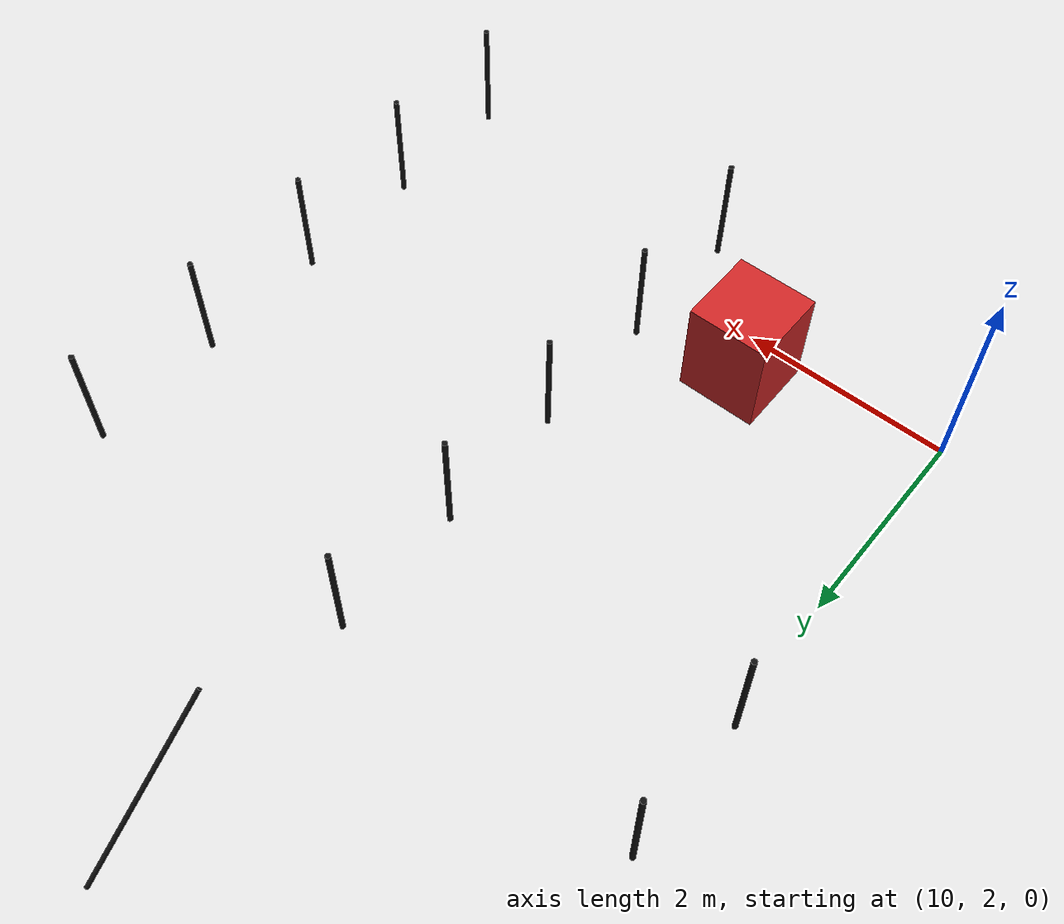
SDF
<sdf version="1.6">
 <world name="default">
  <model name="pole_53">
   <static>1</static>
   <pose>9.94 5.28 0.575 0 -0 0</pose>
   <link name="link">
    <collision name="collision">
     <geometry><cylinder><length>1.15</length><radius>0.025</radius></cylinder></geometry>
    </collision>
    <visual name="visual">
     <geometry><cylinder><length>1.15</length><radius>0.025</radius></cylinder></geometry>
     <material>
      <script><uri>file://media/materials/scripts/gazebo.material</uri><name>Gazebo/Chrome</name></script>
      <shader type="vertex"><normal_map>__default__</normal_map></shader>
      <emissive>0.1 0.1 0.1 1</emissive>
      <specular>0.01 0.01 0.01 1</specular>
      <ambient>0.5 0.5 0.5 1</ambient>
      <diffuse>0.05 0.05 0.05 1</diffuse>
     </material>
    </visual>
   </link>
  </model>
  <model name="pole_54">
   <static>1</static>
   <pose>9.94 6.6 0.575 0 -0 0</pose>
   <link name="link">
    <collision name="collision">
     <geometry><cylinder><length>1.15</length><radius>0.025</radius></cylinder></geometry>
    </collision>
    <visual name="visual">
     <geometry><cylinder><length>1.15</length><radius>0.025</radius></cylinder></geometry>
     <material>
      <script><uri>file://media/materials/scripts/gazebo.material</uri><name>Gazebo/Chrome</name></script>
      <shader type="vertex"><normal_map>__default__</normal_map></shader>
      <emissive>0.1 0.1 0.1 1</emissive>
      <specular>0.01 0.01 0.01 1</specular>
      <ambient>0.5 0.5 0.5 1</ambient>
      <diffuse>0.05 0.05 0.05 1</diffuse>
     </material>
    </visual>
   </link>
  </model>
  <model name="pole_55">
   <static>1</static>
   <pose>12.88 1.32 0.575 0 -0 0</pose>
   <link name="link">
    <collision name="collision">
     <geometry><cylinder><length>1.15</length><radius>0.025</radius></cylinder></geometry>
    </collision>
    <visual name="visual">
     <geometry><cylinder><length>1.15</length><radius>0.025</radius></cylinder></geometry>
     <material>
      <script><uri>file://media/materials/scripts/gazebo.material</uri><name>Gazebo/Chrome</name></script>
      <shader type="vertex"><normal_map>__default__</normal_map></shader>
      <emissive>0.1 0.1 0.1 1</emissive>
      <specular>0.01 0.01 0.01 1</specular>
      <ambient>0.5 0.5 0.5 1</ambient>
      <diffuse>0.05 0.05 0.05 1</diffuse>
     </material>
    </visual>
   </link>
  </model>
  <model name="pole_56">
   <static>1</static>
   <pose>12.88 2.64 0.575 0 -0 0</pose>
   <link name="link">
    <collision name="collision">
     <geometry><cylinder><length>1.15</length><radius>0.025</radius></cylinder></geometry>
    </collision>
    <visual name="visual">
     <geometry><cylinder><length>1.15</length><radius>0.025</radius></cylinder></geometry>
     <material>
      <script><uri>file://media/materials/scripts/gazebo.material</uri><name>Gazebo/Chrome</name></script>
      <shader type="vertex"><normal_map>__default__</normal_map></shader>
      <emissive>0.1 0.1 0.1 1</emissive>
      <specular>0.01 0.01 0.01 1</specular>
      <ambient>0.5 0.5 0.5 1</ambient>
      <diffuse>0.05 0.05 0.05 1</diffuse>
     </material>
    </visual>
   </link>
  </model>
  <model name="pole_57">
   <static>1</static>
   <pose>12.88 3.96 0.575 0 -0 0</pose>
   <link name="link">
    <collision name="collision">
     <geometry><cylinder><length>1.15</length><radius>0.025</radius></cylinder></geometry>
    </collision>
    <visual name="visual">
     <geometry><cylinder><length>1.15</length><radius>0.025</radius></cylinder></geometry>
     <material>
      <script><uri>file://media/materials/scripts/gazebo.material</uri><name>Gazebo/Chrome</name></script>
      <shader type="vertex"><normal_map>__default__</normal_map></shader>
      <emissive>0.1 0.1 0.1 1</emissive>
      <specular>0.01 0.01 0.01 1</specular>
      <ambient>0.5 0.5 0.5 1</ambient>
      <diffuse>0.05 0.05 0.05 1</diffuse>
     </material>
    </visual>
   </link>
  </model>
  <model name="pole_58">
   <static>1</static>
   <pose>12.88 5.28 0.575 0 -0 0</pose>
   <link name="link">
    <collision name="collision">
     <geometry><cylinder><length>1.15</length><radius>0.025</radius></cylinder></geometry>
    </collision>
    <visual name="visual">
     <geometry><cylinder><length>1.15</length><radius>0.025</radius></cylinder></geometry>
     <material>
      <script><uri>file://media/materials/scripts/gazebo.material</uri><name>Gazebo/Chrome</name></script>
      <shader type="vertex"><normal_map>__default__</normal_map></shader>
      <emissive>0.1 0.1 0.1 1</emissive>
      <specular>0.01 0.01 0.01 1</specular>
      <ambient>0.5 0.5 0.5 1</ambient>
      <diffuse>0.05 0.05 0.05 1</diffuse>
     </material>
    </visual>
   </link>
  </model>
  <model name="pole_59">
   <static>1</static>
   <pose>12.88 6.6 0.575 0 -0 0</pose>
   <link name="link">
    <collision name="collision">
     <geometry><cylinder><length>1.15</length><radius>0.025</radius></cylinder></geometry>
    </collision>
    <visual name="visual">
     <geometry><cylinder><length>1.15</length><radius>0.025</radius></cylinder></geometry>
     <material>
      <script><uri>file://media/materials/scripts/gazebo.material</uri><name>Gazebo/Chrome</name></script>
      <shader type="vertex"><normal_map>__default__</normal_map></shader>
      <emissive>0.1 0.1 0.1 1</emissive>
      <specular>0.01 0.01 0.01 1</specular>
      <ambient>0.5 0.5 0.5 1</ambient>
      <diffuse>0.05 0.05 0.05 1</diffuse>
     </material>
    </visual>
   </link>
  </model>
  <model name="pole_60">
   <static>1</static>
   <pose>15.82 1.32 0.575 0 -0 0</pose>
   <link name="link">
    <collision name="collision">
     <geometry><cylinder><length>1.15</length><radius>0.025</radius></cylinder></geometry>
    </collision>
    <visual name="visual">
     <geometry><cylinder><length>1.15</length><radius>0.025</radius></cylinder></geometry>
     <material>
      <script><uri>file://media/materials/scripts/gazebo.material</uri><name>Gazebo/Chrome</name></script>
      <shader type="vertex"><normal_map>__default__</normal_map></shader>
      <emissive>0.1 0.1 0.1 1</emissive>
      <specular>0.01 0.01 0.01 1</specular>
      <ambient>0.5 0.5 0.5 1</ambient>
      <diffuse>0.05 0.05 0.05 1</diffuse>
     </material>
    </visual>
   </link>
  </model>
  <model name="pole_61">
   <static>1</static>
   <pose>15.82 2.64 0.575 0 -0 0</pose>
   <link name="link">
    <collision name="collision">
     <geometry><cylinder><length>1.15</length><radius>0.025</radius></cylinder></geometry>
    </collision>
    <visual name="visual">
     <geometry><cylinder><length>1.15</length><radius>0.025</radius></cylinder></geometry>
     <material>
      <script><uri>file://media/materials/scripts/gazebo.material</uri><name>Gazebo/Chrome</name></script>
      <shader type="vertex"><normal_map>__default__</normal_map></shader>
      <emissive>0.1 0.1 0.1 1</emissive>
      <specular>0.01 0.01 0.01 1</specular>
      <ambient>0.5 0.5 0.5 1</ambient>
      <diffuse>0.05 0.05 0.05 1</diffuse>
     </material>
    </visual>
   </link>
  </model>
  <model name="pole_62">
   <static>1</static>
   <pose>15.82 3.96 0.575 0 -0 0</pose>
   <link name="link">
    <collision name="collision">
     <geometry><cylinder><length>1.15</length><radius>0.025</radius></cylinder></geometry>
    </collision>
    <visual name="visual">
     <geometry><cylinder><length>1.15</length><radius>0.025</radius></cylinder></geometry>
     <material>
      <script><uri>file://media/materials/scripts/gazebo.material</uri><name>Gazebo/Chrome</name></script>
      <shader type="vertex"><normal_map>__default__</normal_map></shader>
      <emissive>0.1 0.1 0.1 1</emissive>
      <specular>0.01 0.01 0.01 1</specular>
      <ambient>0.5 0.5 0.5 1</ambient>
      <diffuse>0.05 0.05 0.05 1</diffuse>
     </material>
    </visual>
   </link>
  </model>
  <model name="pole_63">
   <static>1</static>
   <pose>15.82 5.28 0.575 0 -0 0</pose>
   <link name="link">
    <collision name="collision">
     <geometry><cylinder><length>1.15</length><radius>0.025</radius></cylinder></geometry>
    </collision>
    <visual name="visual">
     <geometry><cylinder><length>1.15</length><radius>0.025</radius></cylinder></geometry>
     <material>
      <script><uri>file://media/materials/scripts/gazebo.material</uri><name>Gazebo/Chrome</name></script>
      <shader type="vertex"><normal_map>__default__</normal_map></shader>
      <emissive>0.1 0.1 0.1 1</emissive>
      <specular>0.01 0.01 0.01 1</specular>
      <ambient>0.5 0.5 0.5 1</ambient>
      <diffuse>0.05 0.05 0.05 1</diffuse>
     </material>
    </visual>
   </link>
  </model>
  <model name="pole_64">
   <static>1</static>
   <pose>15.82 6.6 0.575 0 -0 0</pose>
   <link name="link">
    <collision name="collision">
     <geometry><cylinder><length>1.15</length><radius>0.025</radius></cylinder></geometry>
    </collision>
    <visual name="visual">
     <geometry><cylinder><length>1.15</length><radius>0.025</radius></cylinder></geometry>
     <material>
      <script><uri>file://media/materials/scripts/gazebo.material</uri><name>Gazebo/Chrome</name></script>
      <shader type="vertex"><normal_map>__default__</normal_map></shader>
      <emissive>0.1 0.1 0.1 1</emissive>
      <specular>0.01 0.01 0.01 1</specular>
      <ambient>0.5 0.5 0.5 1</ambient>
      <diffuse>0.05 0.05 0.05 1</diffuse>
     </material>
    </visual>
   </link>
  </model>
  <model name="strut_11">
   <static>1</static>
   <pose>12.86 8.62 0.536 0.896 -0 0</pose>
   <link name="link">
    <collision name="collision">
     <geometry><cylinder><length>1.76</length><radius>0.02</radius></cylinder></geometry>
    </collision>
    <visual name="visual">
     <geometry><cylinder><length>1.76</length><radius>0.02</radius></cylinder></geometry>
     <material>
      <script><uri>file://media/materials/scripts/gazebo.material</uri><name>Gazebo/Chrome</name></script>
      <shader type="vertex"><normal_map>__default__</normal_map></shader>
      <emissive>0.1 0.1 0.1 1</emissive>
      <specular>0.01 0.01 0.01 1</specular>
      <ambient>0.5 0.5 0.5 1</ambient>
      <diffuse>0.05 0.05 0.05 1</diffuse>
     </material>
    </visual>
   </link>
  </model>
  <model name="unit_box">
   <pose>11.85 2.45006 0.499949 -0.000131 0 3.9e-05</pose>
   <link name="link">
    <inertial>
     <mass>1</mass>
     <inertia>
      <ixx>0.166667</ixx>
      <ixy>0</ixy>
      <ixz>0</ixz>
      <iyy>0.166667</iyy>
      <iyz>0</iyz>
      <izz>0.166667</izz>
     </inertia>
    </inertial>
    <collision name="collision"><geometry><box><size>0.770854 0.770757 1</size></box></geometry></collision>
    <visual name="visual">
     <geometry><box><size>0.770854 0.770757 1</size></box></geometry>
     <material>
      <script><name>Gazebo/Red</name><uri>file://media/materials/scripts/gazebo.material</uri></script>
     </material>
    </visual>
   </link>
  </model>
 </world>
</sdf>
